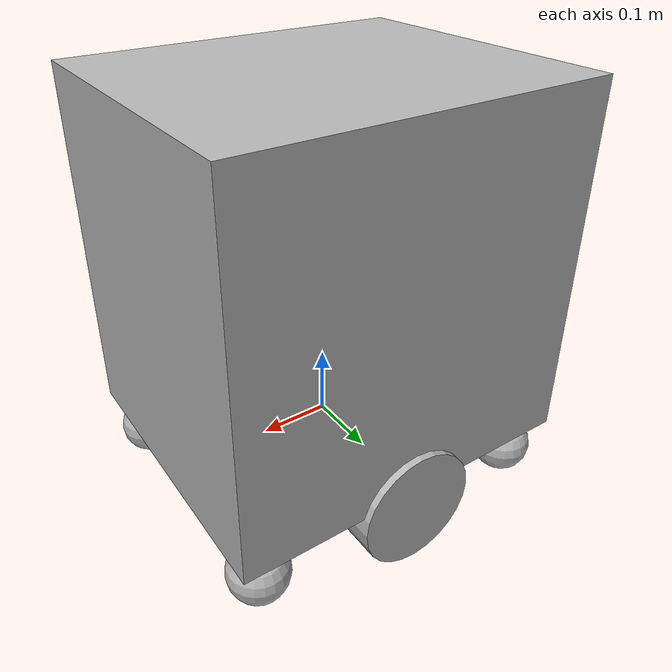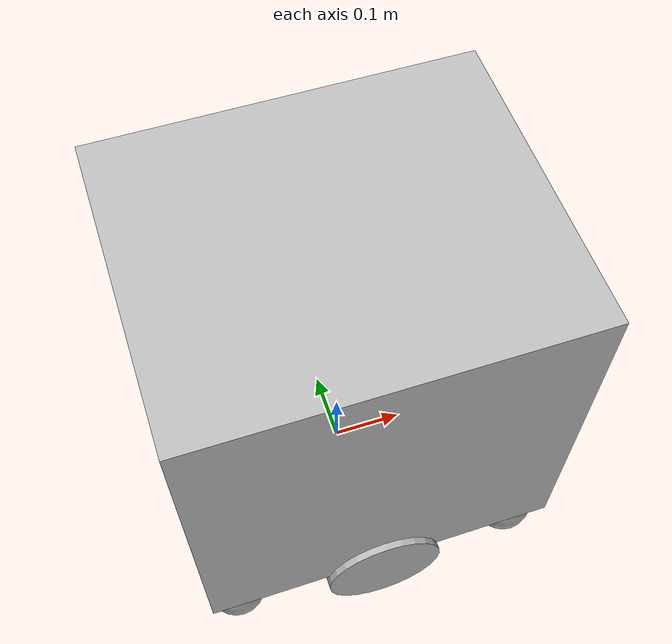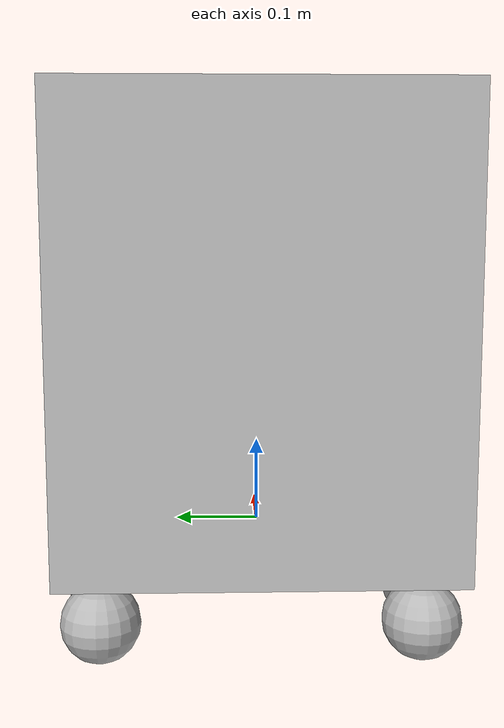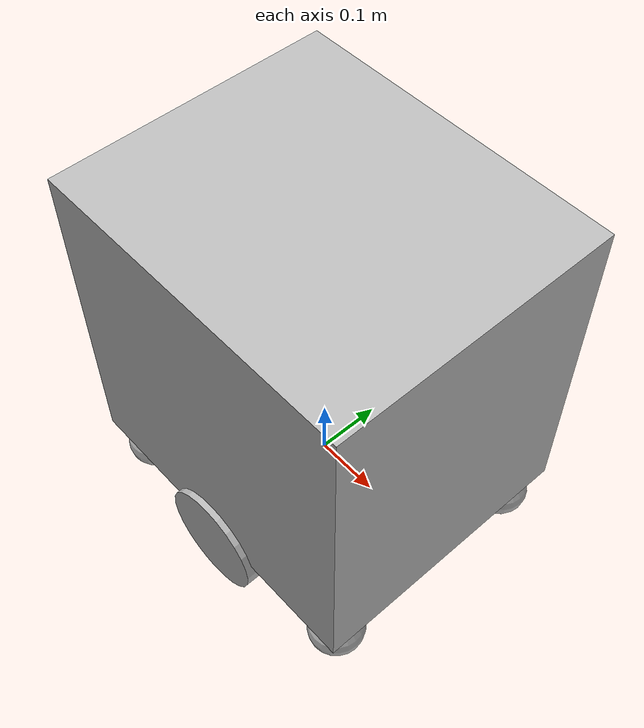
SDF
<sdf version='1.7'>
  <model name='diffdrive_robot'>
    <link name='dummy'>
      <inertial>
        <pose>0 0 -0.000421 0 -0 0</pose>
        <mass>45.4</mass>
        <inertia>
          <ixx>1.68522</ixx>
          <ixy>0</ixy>
          <ixz>0</ixz>
          <iyy>1.97372</iyy>
          <iyz>0</iyz>
          <izz>1.70237</izz>
        </inertia>
      </inertial>
      <collision name='dummy_fixed_joint_lump__base_link_collision'>
        <pose>0 0 0 0 -0 0</pose>
        <geometry>
          <box>
            <size>0.51 0.43 0.51</size>
          </box>
        </geometry>
      </collision>
      <collision name='dummy_fixed_joint_lump__caster_left_frontal_wheel_collision_1'>
        <pose>0.2125 0.17 -0.047813 0 -0 0</pose>
        <geometry>
          <sphere>
            <radius>0.0425</radius>
          </sphere>
        </geometry>
      </collision>
      <collision name='dummy_fixed_joint_lump__caster_left_rear_wheel_collision_2'>
        <pose>-0.2125 0.17 -0.047813 0 -0 0</pose>
        <geometry>
          <sphere>
            <radius>0.0425</radius>
          </sphere>
        </geometry>
      </collision>
      <collision name='dummy_fixed_joint_lump__caster_right_frontal_wheel_collision_3'>
        <pose>0.2125 -0.17 -0.047813 0 -0 0</pose>
        <geometry>
          <sphere>
            <radius>0.0425</radius>
          </sphere>
        </geometry>
      </collision>
      <collision name='dummy_fixed_joint_lump__caster_right_rear_wheel_collision_4'>
        <pose>-0.2125 -0.17 -0.047813 0 -0 0</pose>
        <geometry>
          <sphere>
            <radius>0.0425</radius>
          </sphere>
        </geometry>
      </collision>
      <visual name='dummy_fixed_joint_lump__base_link_visual'>
        <pose>0 0 0.255 0 -0 0</pose>
        <geometry>
          <box>
            <size>0.51 0.43 0.51</size>
          </box>
        </geometry>
      </visual>
      <visual name='dummy_fixed_joint_lump__caster_left_frontal_wheel_visual_1'>
        <pose>0.2125 0.17 -0.047813 0 -0 0</pose>
        <geometry>
          <sphere>
            <radius>0.0425</radius>
          </sphere>
        </geometry>
      </visual>
      <visual name='dummy_fixed_joint_lump__caster_left_rear_wheel_visual_2'>
        <pose>-0.2125 0.17 -0.047813 0 -0 0</pose>
        <geometry>
          <sphere>
            <radius>0.0425</radius>
          </sphere>
        </geometry>
      </visual>
      <visual name='dummy_fixed_joint_lump__caster_right_frontal_wheel_visual_3'>
        <pose>0.2125 -0.17 -0.047813 0 -0 0</pose>
        <geometry>
          <sphere>
            <radius>0.0425</radius>
          </sphere>
        </geometry>
      </visual>
      <visual name='dummy_fixed_joint_lump__caster_right_rear_wheel_visual_4'>
        <pose>-0.2125 -0.17 -0.047813 0 -0 0</pose>
        <geometry>
          <sphere>
            <radius>0.0425</radius>
          </sphere>
        </geometry>
      </visual>
    </link>
    <joint name='left_wheel_joint' type='revolute'>
      <pose relative_to='dummy'>0 -0.195 -0.02125 0 -0 0</pose>
      <parent>dummy</parent>
      <child>left_wheel</child>
      <axis>
        <xyz>0 1 0</xyz>
        <limit>
          <lower>-1e+16</lower>
          <upper>1e+16</upper>
        </limit>
        <dynamics>
          <damping>0.2</damping>
          <friction>0</friction>
          <spring_reference>0</spring_reference>
          <spring_stiffness>0</spring_stiffness>
        </dynamics>
      </axis>
    </joint>
    <link name='left_wheel'>
      <pose relative_to='left_wheel_joint'>0 0 0 0 -0 0</pose>
      <inertial>
        <pose>0 0 0 1.5708 -0 0</pose>
        <mass>3</mass>
        <inertia>
          <ixx>0.055</ixx>
          <ixy>0</ixy>
          <ixz>0</ixz>
          <iyy>0.055</iyy>
          <iyz>0</iyz>
          <izz>0.108</izz>
        </inertia>
      </inertial>
      <collision name='left_wheel_collision'>
        <pose>0 0 0 1.5708 -0 0</pose>
        <geometry>
          <cylinder>
            <length>0.06</length>
            <radius>0.085</radius>
          </cylinder>
        </geometry>
      </collision>
      <visual name='left_wheel_visual'>
        <pose>0 0 0 1.5708 -0 0</pose>
        <geometry>
          <cylinder>
            <length>0.06</length>
            <radius>0.085</radius>
          </cylinder>
        </geometry>
      </visual>
    </link>
    <joint name='right_wheel_joint' type='revolute'>
      <pose relative_to='dummy'>0 0.195 -0.02125 0 -0 0</pose>
      <parent>dummy</parent>
      <child>right_wheel</child>
      <axis>
        <xyz>0 1 0</xyz>
        <limit>
          <lower>-1e+16</lower>
          <upper>1e+16</upper>
        </limit>
        <dynamics>
          <damping>0.2</damping>
          <friction>0</friction>
          <spring_reference>0</spring_reference>
          <spring_stiffness>0</spring_stiffness>
        </dynamics>
      </axis>
    </joint>
    <link name='right_wheel'>
      <pose relative_to='right_wheel_joint'>0 0 0 0 -0 0</pose>
      <inertial>
        <pose>0 0 0 1.5708 -0 0</pose>
        <mass>3</mass>
        <inertia>
          <ixx>0.055</ixx>
          <ixy>0</ixy>
          <ixz>0</ixz>
          <iyy>0.055</iyy>
          <iyz>0</iyz>
          <izz>0.108</izz>
        </inertia>
      </inertial>
      <collision name='right_wheel_collision'>
        <pose>0 0 0 1.5708 -0 0</pose>
        <geometry>
          <cylinder>
            <length>0.06</length>
            <radius>0.085</radius>
          </cylinder>
        </geometry>
      </collision>
      <visual name='right_wheel_visual'>
        <pose>0 0 0 1.5708 -0 0</pose>
        <geometry>
          <cylinder>
            <length>0.06</length>
            <radius>0.085</radius>
          </cylinder>
        </geometry>
      </visual>
    </link>
  </model>
</sdf>
